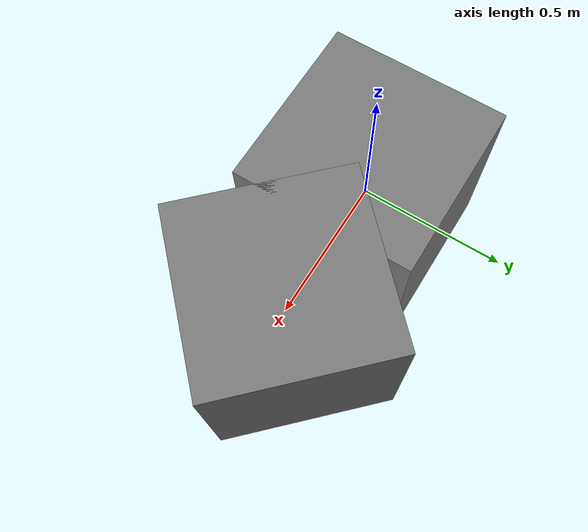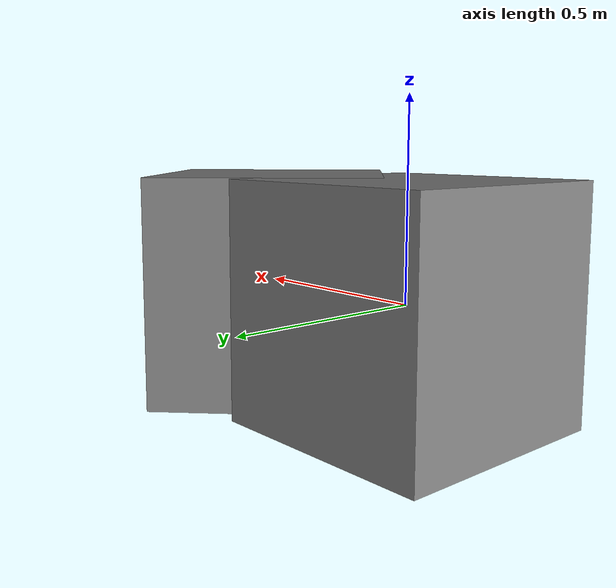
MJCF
<mujoco model="box_box_ee_1">
            <option gravity="0 0 0" timestep="0.001"/>
            <worldbody>
                <body name="box1" pos="0 0 0">
                    <joint type="free"/>
                    <geom type="box" size="0.3 0.3 0.3"/>
                </body>
                <body name="box2" pos="0.5 0 0" euler="0 0 45">
                    <joint type="free"/>
                    <geom type="box" size="0.3 0.3 0.3"/>
                </body>
            </worldbody>
        </mujoco>
